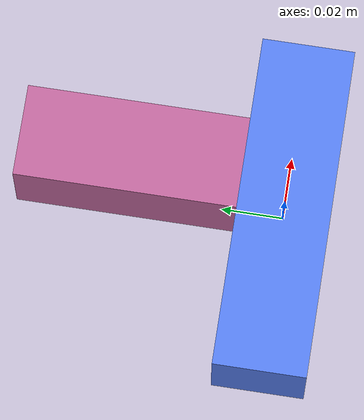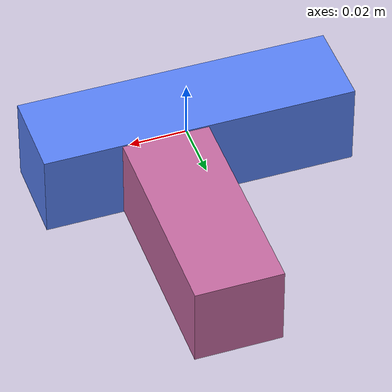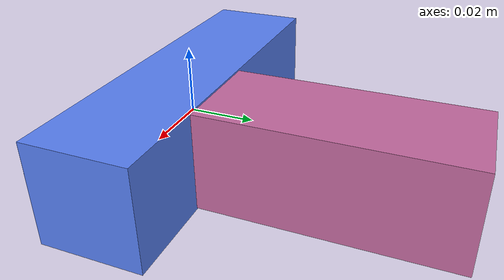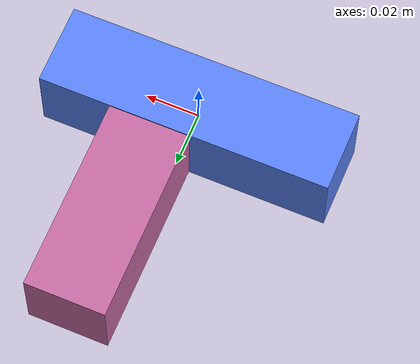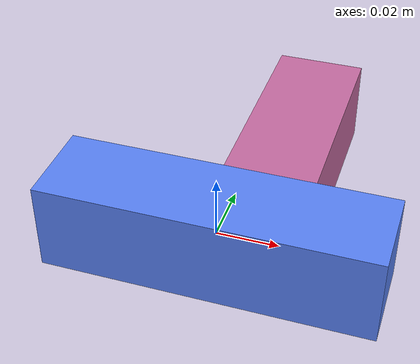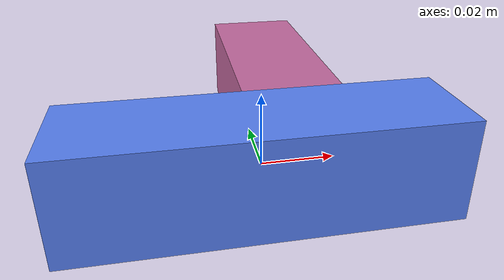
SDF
<sdf version="1.4"><world name="default"><model name="object0"><link name="link1"><pose>0 0 0 0 0 0</pose><inertial><pose>0 0 0 0 0 0</pose><mass>0.05862947722429232</mass><inertia><ixx>8.794421583643847e-06</ixx><ixy>0</ixy><iyy>6.199148365613735e-05</iyy><ixz>0</ixz><iyz>0</iyz><izz>6.199148365613735e-05</izz></inertia></inertial><visual name="link1_visual"><pose>0 0  0 0 0 0</pose><geometry><box><size>0.10857310597091172 0.03 0.03</size></box></geometry><material><diffuse>0.34711674978686824 0.5088730859941877 0.9614891186302914 1</diffuse></material></visual><collision><pose>0 0  0 0 0 0</pose><geometry><box><size>0.10857310597091172 0.03 0.03</size></box></geometry></collision></link><link name="link2"><pose>0.012358730817958283 0.03895237528983857 0 0 0 0</pose><inertial><pose>0 0 0 0 0 0</pose><mass>0.05190009276993383</mass><inertia><ixx>4.358906580072437e-05</ixx><ixy>0</ixy><iyy>7.529838459371233e-06</iyy><ixz>0</ixz><iyz>0</iyz><izz>4.3844241256843214e-05</izz></inertia></inertial><visual name="link2_visual"><pose>0 0  0 0 0 0</pose><geometry><box><size>0.03 0.09611128290728486 0.028999999999999998</size></box></geometry><material><diffuse>0.7723755645523867 0.41508780336567375 0.6314790867441235 1</diffuse></material></visual><collision><pose>0 0  0 0 0 0</pose><geometry><box><size>0.03 0.09611128290728486 0.028999999999999998</size></box></geometry></collision></link><joint name="link_joint_0" type="fixed"><parent>link1</parent><child>link2</child><pose>0 0 0 0 0 0</pose><axis><xyz>0 0 1</xyz></axis></joint></model></world></sdf>
